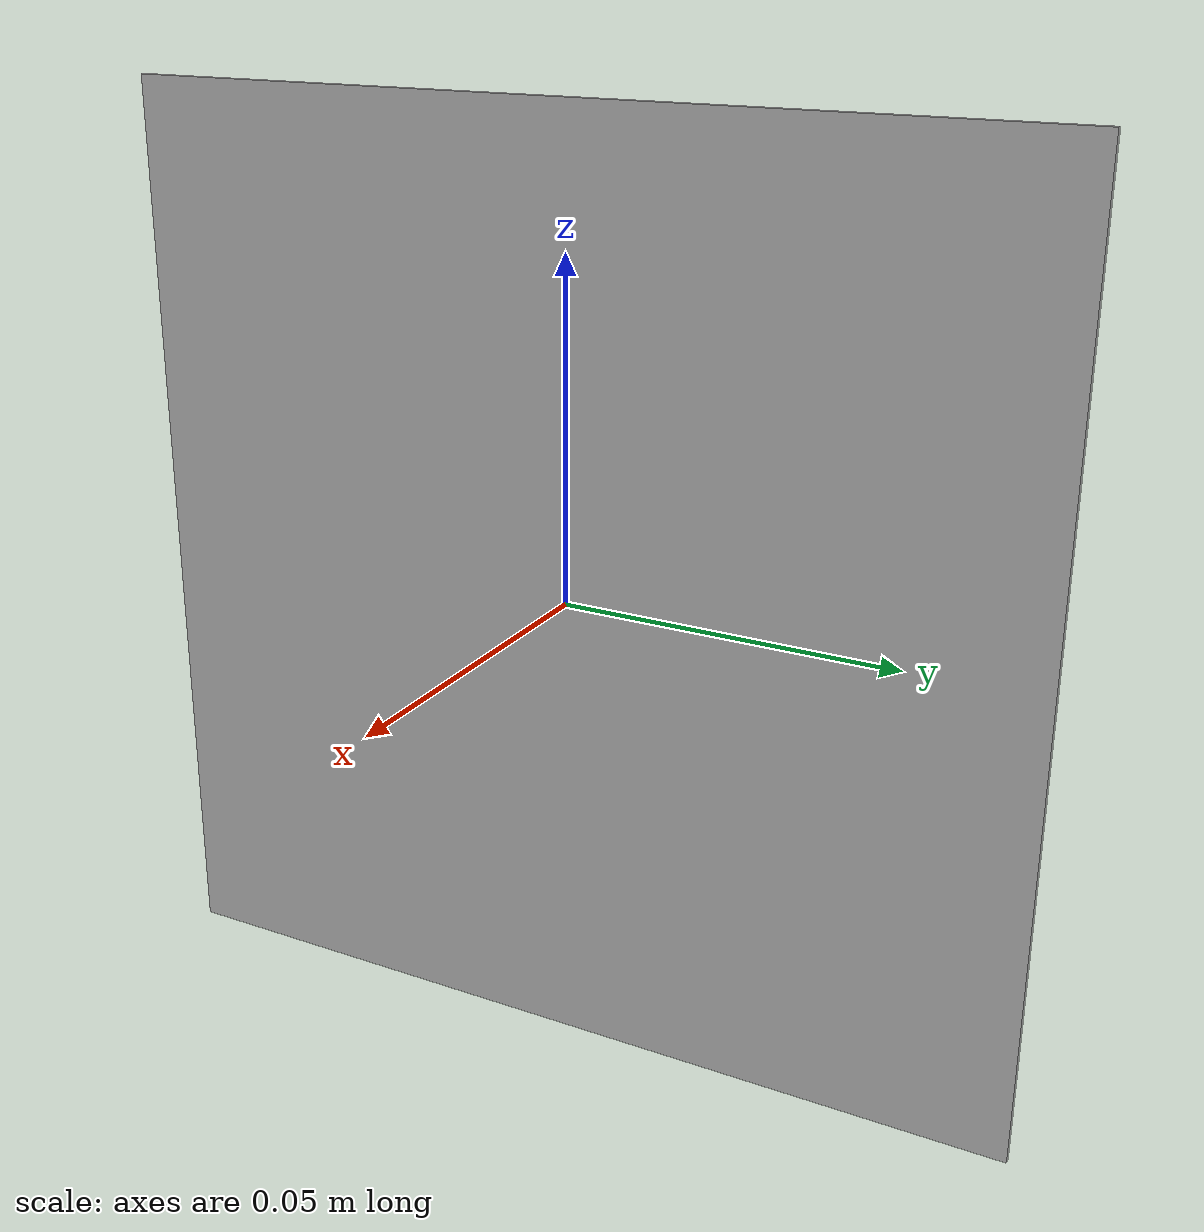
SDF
<?xml version="1.0" ?>
<sdf version="1.4">
  <model name="marker3_border_12cm">
    <static>true</static>
    <link name="marker3_border_12cm">
      <visual name="visual">
        <geometry>
          <box>
            <size>0.001 0.14 0.14</size>
            <!-- SIZE OF THE MARKER + MARGIN -->
          </box>
        </geometry>
        <material>
          <script>
	    <uri>model://marker3_border_12cm/material/scripts</uri>
	    <uri>model://marker3_border_12cm/material/textures</uri>
            <name>ARtrack/marker3_border_12cm</name>
          </script>
        </material>
      </visual>
      <collision name="collision">
        <geometry>
          <box>
            <size>0.001 0.14 0.14</size>
            <!-- SIZE OF THE MARKER + MARGIN -->
          </box>
        </geometry>
      </collision>
    </link>
  </model>
</sdf>
